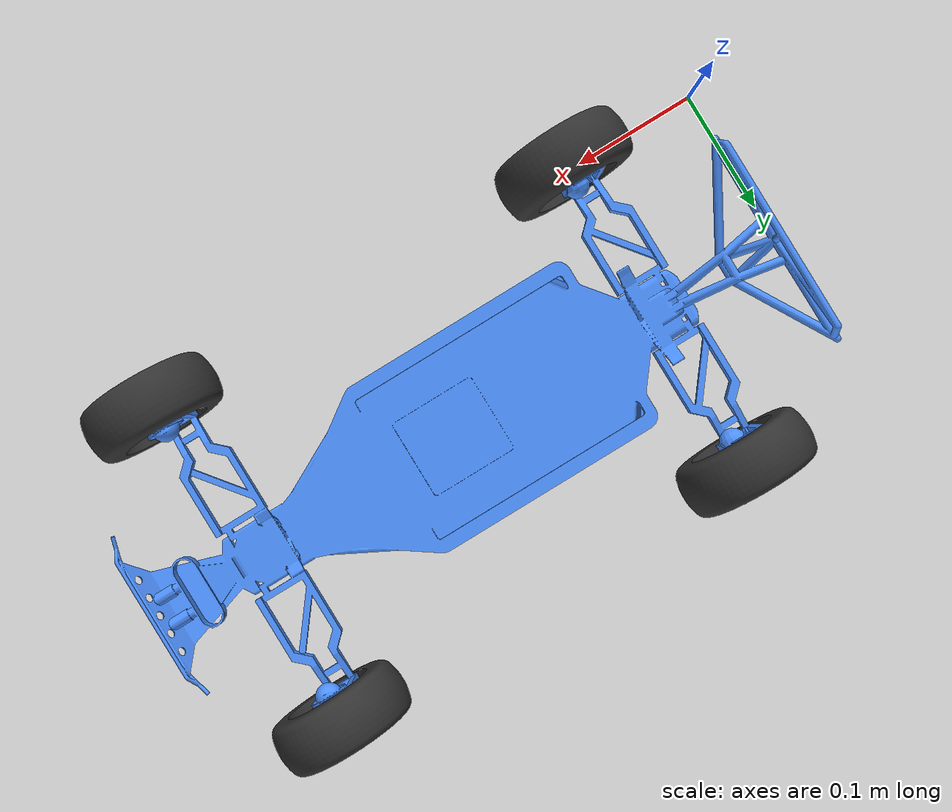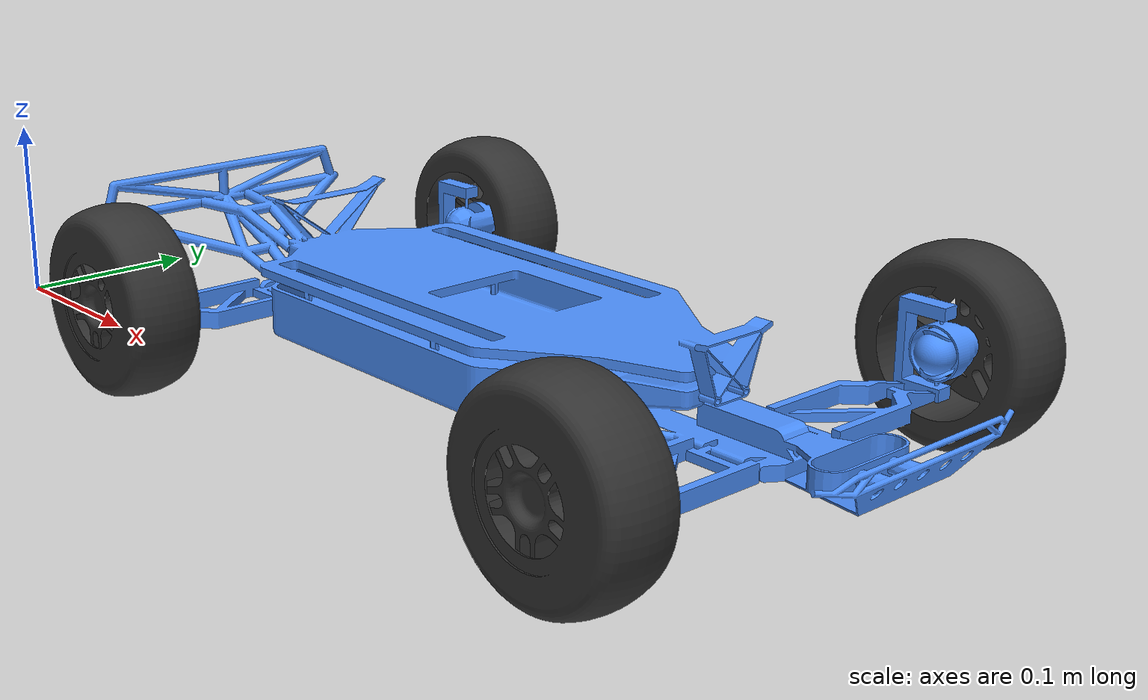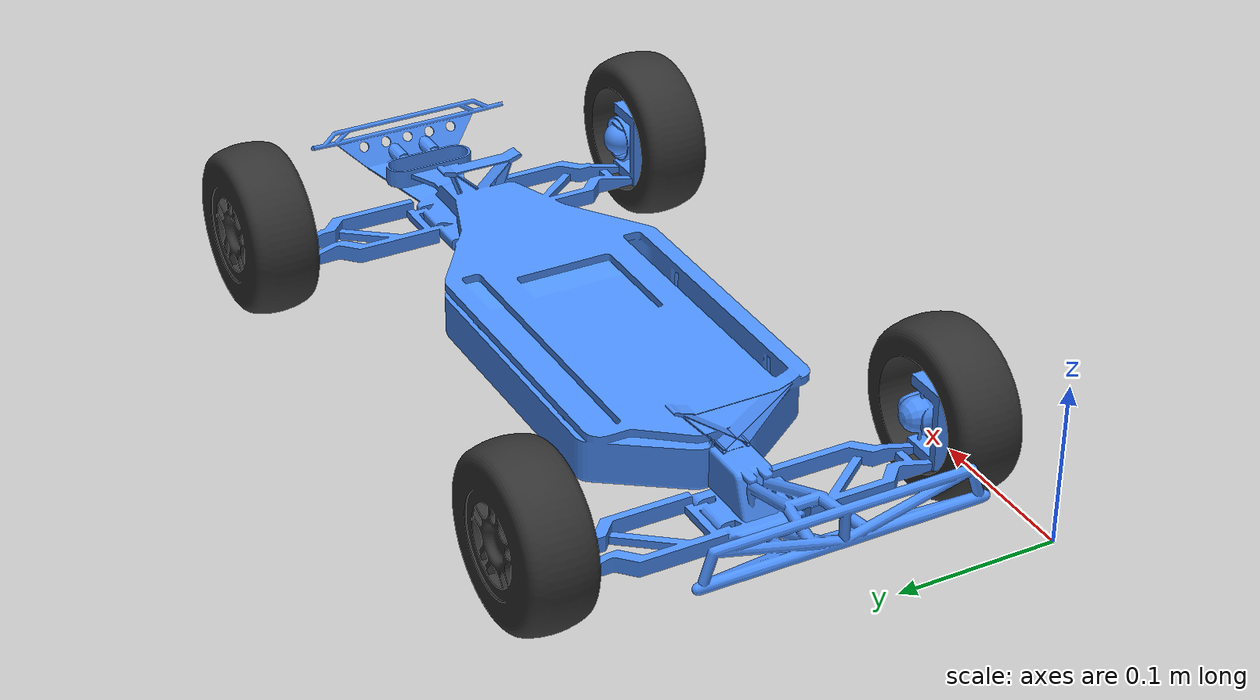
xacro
<?xml version="1.0" ?>
<robot name="f1tenth" xmlns:xacro="http://www.ros.org/wiki/xacro">

<xacro:include filename="$(find Assembly_description)/urdf/materials.xacro" />
<xacro:include filename="$(find Assembly_description)/urdf/Assembly.trans" />
<xacro:include filename="$(find Assembly_description)/urdf/Assembly.gazebo" />
<link name="base_link">
  <inertial>
    <origin xyz="0.25842960269512494 0.1300065695163831 0.017821626738037465" rpy="0 0 0"/>
    <mass value="4.156457046473223"/>
    <inertia ixx="0.013034" iyy="0.084094" izz="0.095033" ixy="-6e-06" iyz="0.0" ixz="0.000867"/>
  </inertial>
  <visual>
    <origin xyz="0 0 0" rpy="0 0 0"/>
    <geometry>
      <mesh filename="file:////home/msc-gang/ros_noetic/src/Assembly_description/meshes/base_link.stl" scale="0.001 0.001 0.001"/>
    </geometry>
    <material name="blue"/>
  </visual>
  <collision>
    <origin xyz="0 0 0" rpy="0 0 0"/>
    <geometry>
      <mesh filename="file:////home/msc-gang/ros_noetic/src/Assembly_description/meshes/base_link.stl" scale="0.001 0.001 0.001"/>
    </geometry>
  </collision>
</link>

<link name="rotator_left_1">
  <inertial>
    <origin xyz="5.107363362233386e-07 0.003934914786975663 0.01800001400288645" rpy="0 0 0"/>
    <mass value="0.09154101472024741"/>
    <inertia ixx="1.1e-05" iyy="7e-06" izz="1e-05" ixy="0.0" iyz="0.0" ixz="0.0"/>
  </inertial>
  <visual>
    <origin xyz="-0.478955 -0.253074 -0.008" rpy="0 0 0"/>
    <geometry>
      <mesh filename="file:////home/msc-gang/ros_noetic/src/Assembly_description/meshes/rotator_left_1.stl" scale="0.001 0.001 0.001"/>
    </geometry>
    <material name="blue"/>
  </visual>
  <collision>
    <origin xyz="-0.478955 -0.253074 -0.008" rpy="0 0 0"/>
    <geometry>
      <mesh filename="file:////home/msc-gang/ros_noetic/src/Assembly_description/meshes/rotator_left_1.stl" scale="0.001 0.001 0.001"/>
    </geometry>
  </collision>
</link>

<link name="rotator_right_1">
  <inertial>
    <origin xyz="5.109449456308646e-07 -0.0039356889065224965 0.01800001400229651" rpy="0 0 0"/>
    <mass value="0.0915410147202475"/>
    <inertia ixx="1.1e-05" iyy="7e-06" izz="1e-05" ixy="-0.0" iyz="-0.0" ixz="0.0"/>
  </inertial>
  <visual>
    <origin xyz="-0.478955 -0.007025 -0.008" rpy="0 0 0"/>
    <geometry>
      <mesh filename="file:////home/msc-gang/ros_noetic/src/Assembly_description/meshes/rotator_right_1.stl" scale="0.001 0.001 0.001"/>
    </geometry>
    <material name="blue"/>
  </visual>
  <collision>
    <origin xyz="-0.478955 -0.007025 -0.008" rpy="0 0 0"/>
    <geometry>
      <mesh filename="file:////home/msc-gang/ros_noetic/src/Assembly_description/meshes/rotator_right_1.stl" scale="0.001 0.001 0.001"/>
    </geometry>
  </collision>
</link>

<link name="wheel_back_left_1">
  <inertial>
    <origin xyz="2.6808355396701344e-09 -0.004873834232398566 -1.6533018669384614e-09" rpy="0 0 0"/>
    <mass value="1.8001224559704576"/>
    <inertia ixx="0.001935" iyy="0.003387" izz="0.001935" ixy="0.0" iyz="-0.0" ixz="0.0"/>
  </inertial>
  <visual>
    <origin xyz="-0.114 -0.2698 -0.0205" rpy="0 0 0"/>
    <geometry>
      <mesh filename="file:////home/msc-gang/ros_noetic/src/Assembly_description/meshes/wheel_back_left_1.stl" scale="0.001 0.001 0.001"/>
    </geometry>
    <material name="black"/>
  </visual>
  <collision>
    <origin xyz="-0.114 -0.2698 -0.0205" rpy="0 0 0"/>
    <geometry>
      <mesh filename="file:////home/msc-gang/ros_noetic/src/Assembly_description/meshes/wheel_back_left_1.stl" scale="0.001 0.001 0.001"/>
    </geometry>
  </collision>
</link>

<link name="wheel_back_right_1">
  <inertial>
    <origin xyz="2.8894521220124147e-09 0.004873835811921283 1.787412350073847e-09" rpy="0 0 0"/>
    <mass value="1.8001224559704576"/>
    <inertia ixx="0.001935" iyy="0.003387" izz="0.001935" ixy="-0.0" iyz="-0.0" ixz="-0.0"/>
  </inertial>
  <visual>
    <origin xyz="-0.114 0.0098 -0.0205" rpy="0 0 0"/>
    <geometry>
      <mesh filename="file:////home/msc-gang/ros_noetic/src/Assembly_description/meshes/wheel_back_right_1.stl" scale="0.001 0.001 0.001"/>
    </geometry>
    <material name="black"/>
  </visual>
  <collision>
    <origin xyz="-0.114 0.0098 -0.0205" rpy="0 0 0"/>
    <geometry>
      <mesh filename="file:////home/msc-gang/ros_noetic/src/Assembly_description/meshes/wheel_back_right_1.stl" scale="0.001 0.001 0.001"/>
    </geometry>
  </collision>
</link>

<link name="wheel_front_left_1">
  <inertial>
    <origin xyz="4.701106859905657e-07 -0.004874166721957118 -1.6533018391828858e-09" rpy="0 0 0"/>
    <mass value="1.8001224559704576"/>
    <inertia ixx="0.001935" iyy="0.003387" izz="0.001935" ixy="0.0" iyz="-0.0" ixz="0.0"/>
  </inertial>
  <visual>
    <origin xyz="-0.478955 -0.274374 -0.026" rpy="0 0 0"/>
    <geometry>
      <mesh filename="file:////home/msc-gang/ros_noetic/src/Assembly_description/meshes/wheel_front_left_1.stl" scale="0.001 0.001 0.001"/>
    </geometry>
    <material name="black"/>
  </visual>
  <collision>
    <origin xyz="-0.478955 -0.274374 -0.026" rpy="0 0 0"/>
    <geometry>
      <mesh filename="file:////home/msc-gang/ros_noetic/src/Assembly_description/meshes/wheel_front_left_1.stl" scale="0.001 0.001 0.001"/>
    </geometry>
  </collision>
</link>

<link name="wheel_front_right_1">
  <inertial>
    <origin xyz="4.7031929567564745e-07 0.004873392602410289 1.7874124819128312e-09" rpy="0 0 0"/>
    <mass value="1.8001224559704576"/>
    <inertia ixx="0.001935" iyy="0.003387" izz="0.001935" ixy="-0.0" iyz="-0.0" ixz="-0.0"/>
  </inertial>
  <visual>
    <origin xyz="-0.478955 0.014275 -0.026" rpy="0 0 0"/>
    <geometry>
      <mesh filename="file:////home/msc-gang/ros_noetic/src/Assembly_description/meshes/wheel_front_right_1.stl" scale="0.001 0.001 0.001"/>
    </geometry>
    <material name="black"/>
  </visual>
  <collision>
    <origin xyz="-0.478955 0.014275 -0.026" rpy="0 0 0"/>
    <geometry>
      <mesh filename="file:////home/msc-gang/ros_noetic/src/Assembly_description/meshes/wheel_front_right_1.stl" scale="0.001 0.001 0.001"/>
    </geometry>
  </collision>
</link>

<joint name="Revolute_40" type="continuous">
  <origin xyz="0.478955 0.253074 0.008" rpy="0 0 0"/>
  <parent link="base_link"/>
  <child link="rotator_left_1"/>
  <axis xyz="-0.0 -0.0 1.0"/>
  <limit lower="-3.14159" upper="3.14159" effort="5" velocity="1"/>
</joint>

<joint name="Revolute_41" type="continuous">
  <origin xyz="0.478955 0.007025 0.008" rpy="0 0 0"/>
  <parent link="base_link"/>
  <child link="rotator_right_1"/>
  <axis xyz="0.0 -0.0 -1.0"/>
  <limit lower="-3.14159" upper="3.14159" effort="5" velocity="1"/>
</joint>

<joint name="Revolute_42" type="continuous">
  <origin xyz="0.114 0.2698 0.0205" rpy="0 0 0"/>
  <parent link="base_link"/>
  <child link="wheel_back_left_1"/>
  <axis xyz="0.0 1.0 0.0"/>
</joint>

<joint name="Revolute_43" type="continuous">
  <origin xyz="0.114 -0.0098 0.0205" rpy="0 0 0"/>
  <parent link="base_link"/>
  <child link="wheel_back_right_1"/>
  <axis xyz="0.0 -1.0 0.0"/>
</joint>

<joint name="Revolute_44" type="continuous">
  <origin xyz="0.0 0.0213 0.018" rpy="0 0 0"/>
  <parent link="rotator_left_1"/>
  <child link="wheel_front_left_1"/>
  <axis xyz="0.0 1.0 0.0"/>
</joint>

<joint name="Revolute_45" type="continuous">
  <origin xyz="0.0 -0.0213 0.018" rpy="0 0 0"/>
  <parent link="rotator_right_1"/>
  <child link="wheel_front_right_1"/>
  <axis xyz="0.0 -1.0 -0.0"/>
</joint>

</robot>

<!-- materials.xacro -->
<robot name="Assembly" xmlns:xacro="http://www.ros.org/wiki/xacro" >

<material name="silver">
  <color rgba="0.700 0.700 0.700 1.000"/>
</material>

<material name="black">
  <color rgba="0.2 0.2 0.2 1."/>
</material>

<material name="blue">
  <color rgba="0.3 0.57 1. 1."/>
</material>

</robot>

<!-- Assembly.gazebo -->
<robot name="Assembly" xmlns:xacro="http://www.ros.org/wiki/xacro" >

<xacro:property name="body_color" value="Gazebo/Silver" />

<gazebo>
  <plugin name="control" filename="libgazebo_ros_control.so"/>
</gazebo>
<gazebo reference="base_link">
  <material>${body_color}</material>
  <mu1>0.2</mu1>
  <mu2>0.2</mu2>
  <selfCollide>true</selfCollide>
  <gravity>true</gravity>
</gazebo>

<gazebo reference="rotator_left_1">
  <material>${body_color}</material>
  <mu1>0.2</mu1>
  <mu2>0.2</mu2>
  <selfCollide>true</selfCollide>
</gazebo>

<gazebo reference="rotator_right_1">
  <material>${body_color}</material>
  <mu1>0.2</mu1>
  <mu2>0.2</mu2>
  <selfCollide>true</selfCollide>
</gazebo>

<gazebo reference="wheel_back_left_1">
  <material>${body_color}</material>
  <mu1>0.2</mu1>
  <mu2>0.2</mu2>
  <selfCollide>true</selfCollide>
</gazebo>

<gazebo reference="wheel_back_right_1">
  <material>${body_color}</material>
  <mu1>0.2</mu1>
  <mu2>0.2</mu2>
  <selfCollide>true</selfCollide>
</gazebo>

<gazebo reference="wheel_front_left_1">
  <material>${body_color}</material>
  <mu1>0.2</mu1>
  <mu2>0.2</mu2>
  <selfCollide>true</selfCollide>
</gazebo>

<gazebo reference="wheel_front_right_1">
  <material>${body_color}</material>
  <mu1>0.2</mu1>
  <mu2>0.2</mu2>
  <selfCollide>true</selfCollide>
</gazebo>

</robot>
